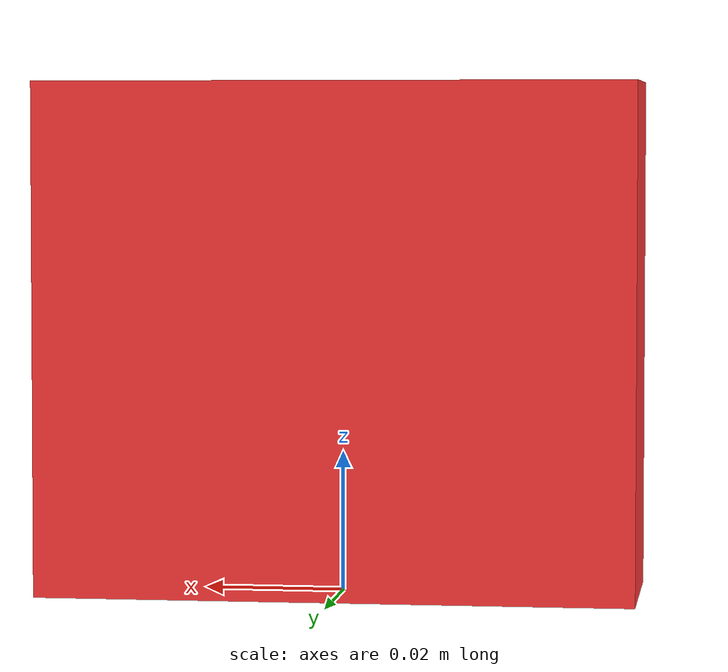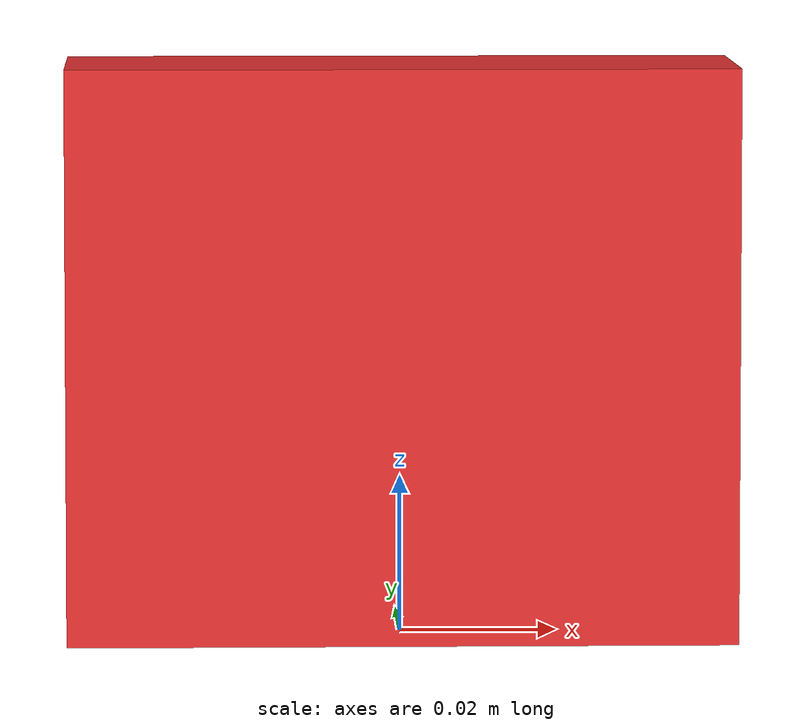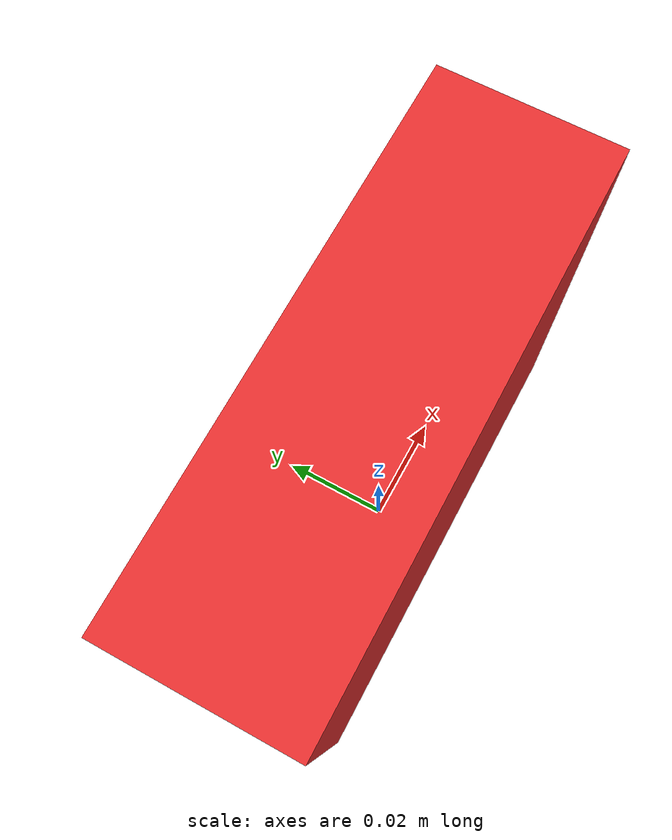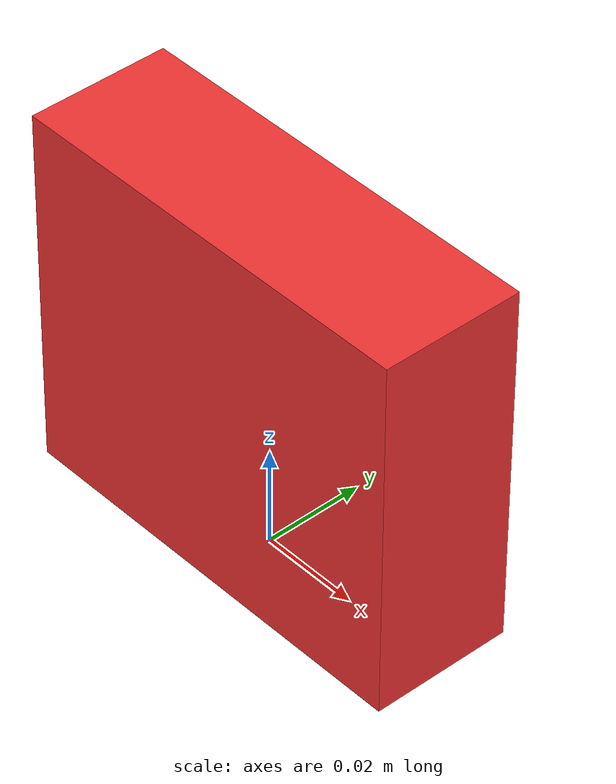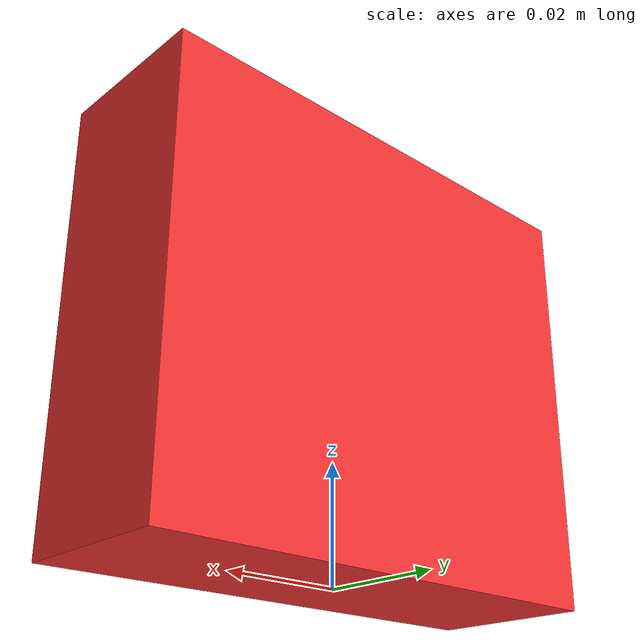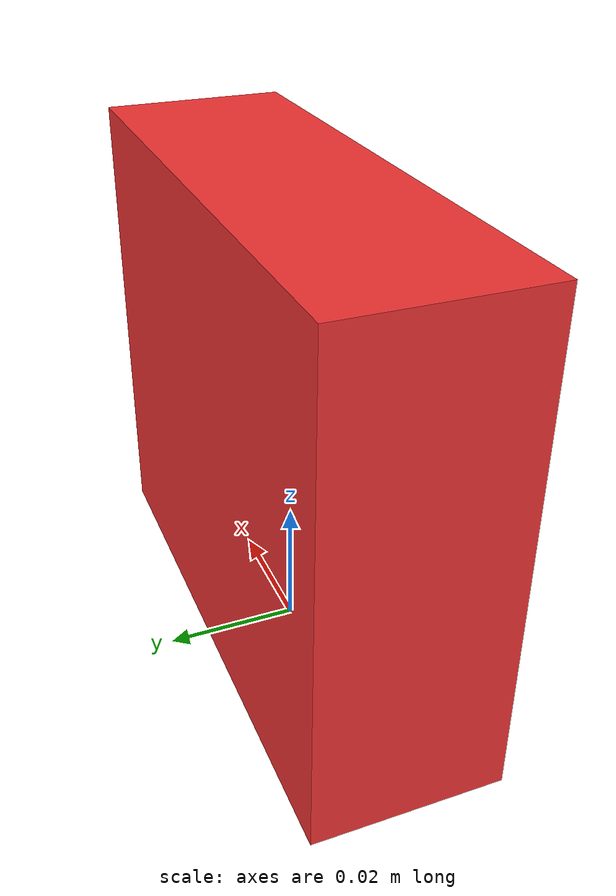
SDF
<?xml version="1.0"?>
<sdf version='1.6'>
<model name="gelatin_box">
  <link name="base_link">
    <inertial>
      <pose frame=''>0 0 0.0365 0 0 0</pose>
      <mass>0.097</mass>
        <inertia>
          <ixx>0.000101478166667</ixx>
          <ixy>0</ixy>
          <ixz>0</ixz>
          <iyy>4.94134166667e-05</iyy>
          <iyz>0</iyz>
          <izz>6.47394166667e-05</izz>
        </inertia>
    </inertial>
    <visual name='base_link_gelatin'>
      <pose frame=''>0 0 0.0365 0 0 0</pose>
      <geometry>
        <box>
          <size> 0.085 0.028 0.073</size>
        </box>
      </geometry>
      <material>
        <diffuse>0.95 0.2 0.2 1.0</diffuse>
      </material>
    </visual>

    <collision name='gelatin_box_collision'>
      <pose>0 0 0.0365 0 0 0</pose>
      <geometry>
        <box>
          <size> 0.084 0.027 0.072</size>
        </box>
      </geometry>
      <material>
        <diffuse>0 1 0 1.0</diffuse>
      </material>
    </collision>

   </link>
</model>
</sdf>
